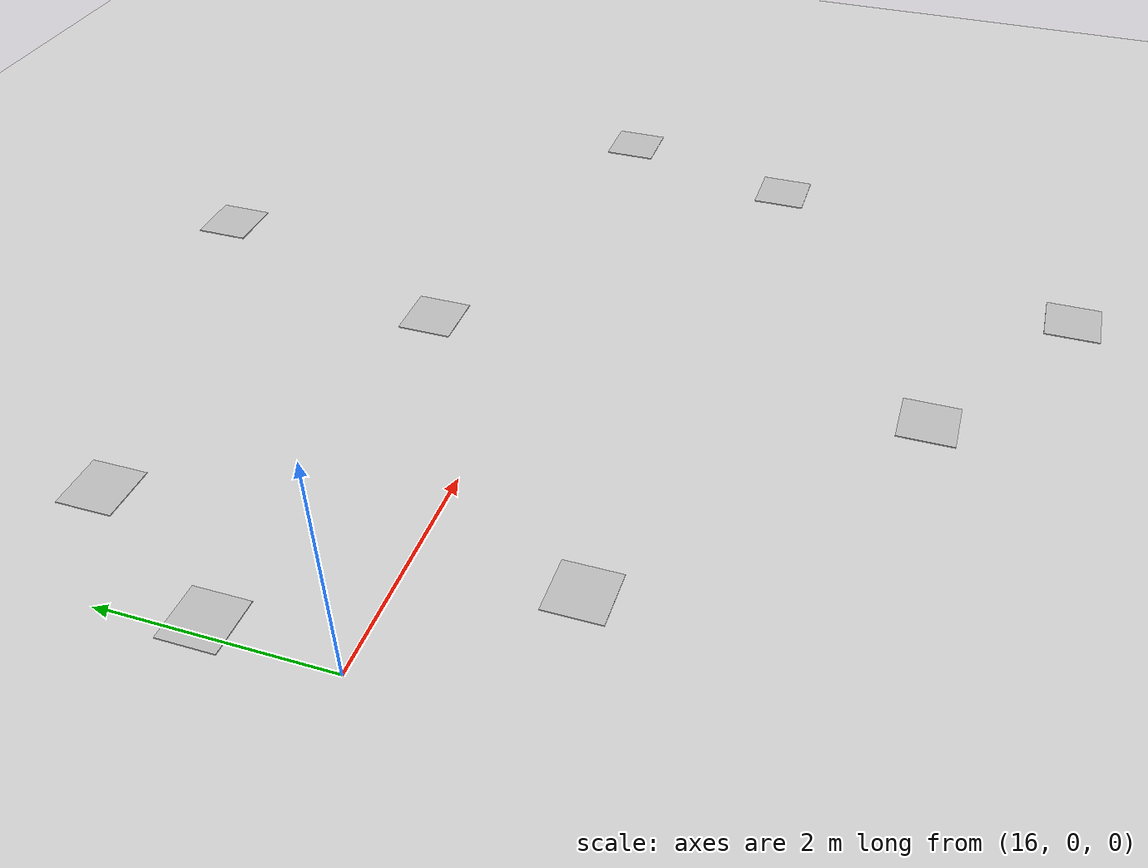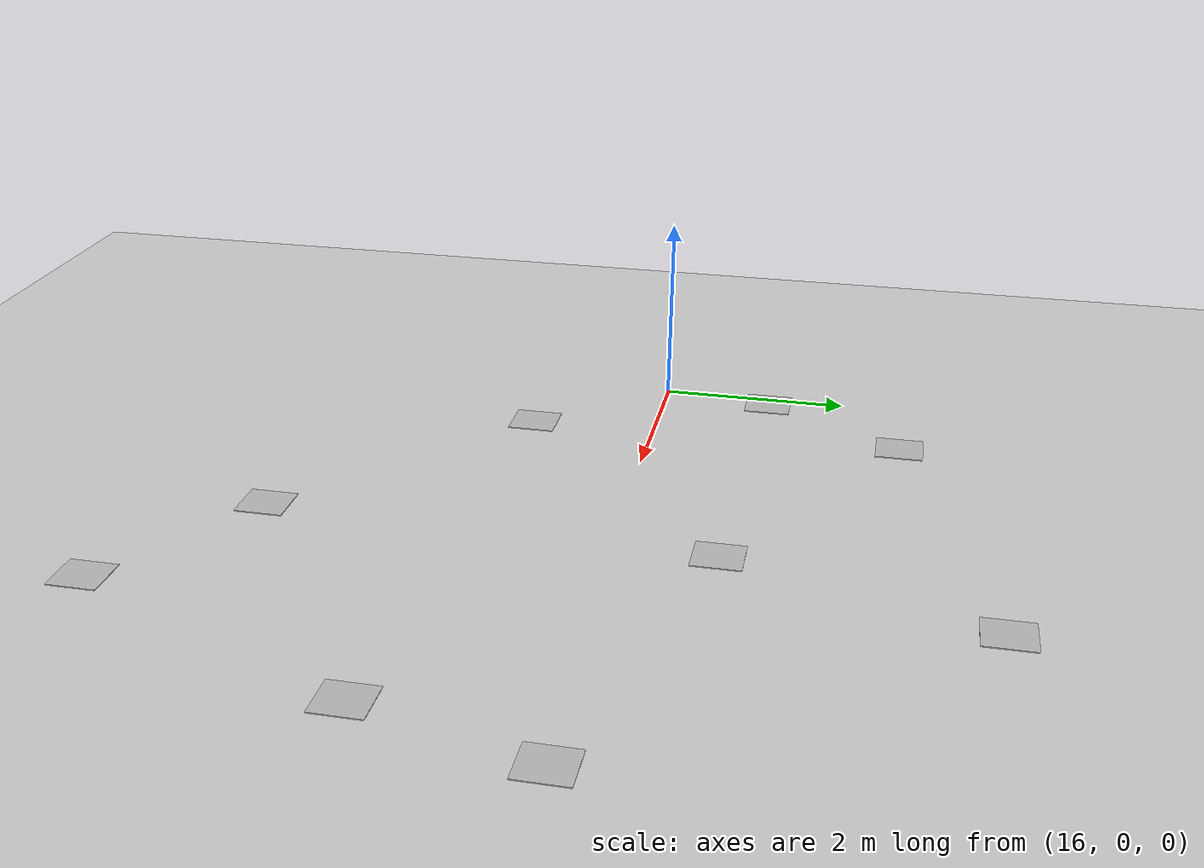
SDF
<sdf version="1.7">
 <world name="default">
  <model name="ground_plane">
   <static>1</static>
   <link name="link">
    <collision name="collision">
     <geometry><plane><normal>0 0 1</normal><size>5000 5000</size></plane></geometry>
     <surface><friction><ode><mu>1</mu><mu2>1</mu2></ode></friction></surface>
    </collision>
    <visual name="runway">
     <pose>0 0 0.005 0 -0 0</pose>
     <cast_shadows>0</cast_shadows>
     <geometry><plane><normal>0 0 1</normal><size>1829 45</size></plane></geometry>
     <material>
      <script><uri>file://media/materials/scripts/gazebo.material</uri><name>Gazebo/Runway</name></script>
     </material>
    </visual>
    <visual name="grass">
     <pose>0 0 -0.1 0 -0 0</pose>
     <cast_shadows>0</cast_shadows>
     <geometry><plane><normal>0 0 1</normal><size>5000 5000</size></plane></geometry>
     <material>
      <script><uri>file://media/materials/scripts/gazebo.material</uri><name>Gazebo/Grass</name></script>
     </material>
    </visual>
   </link>
  </model>
  <model name="circle8">
   <pose>16.1374 1.16999 0.005 0 -0 0</pose>
   <link name="link">
    <collision name="collision"><geometry><box><size>0.5 0.5 0.01</size></box></geometry></collision>
    <visual name="visual">
     <geometry><box><size>0.5 0.5 0.01</size></box></geometry>
     <material>
      <script>
       <uri>model://circle8/materials/scripts</uri>
       <uri>model://circle8/materials/textures</uri>
       <name>circle8</name>
      </script>
     </material>
    </visual>
    <inertial>
     <inertia><ixx>1</ixx><ixy>0</ixy><ixz>0</ixz><iyy>1</iyy><iyz>0</iyz><izz>1</izz></inertia>
     <mass>1</mass>
    </inertial>
   </link>
  </model>
  <model name="cross7">
   <pose>17.1859 -1.32964 0.005 0 -0 0</pose>
   <link name="link">
    <collision name="collision"><geometry><box><size>0.5 0.5 0.01</size></box></geometry></collision>
    <visual name="visual">
     <geometry><box><size>0.5 0.5 0.01</size></box></geometry>
     <material>
      <script>
       <uri>model://cross7/materials/scripts</uri>
       <uri>model://cross7/materials/textures</uri>
       <name>cross7</name>
      </script>
     </material>
    </visual>
    <inertial>
     <inertia><ixx>1</ixx><ixy>0</ixy><ixz>0</ixz><iyy>1</iyy><iyz>0</iyz><izz>1</izz></inertia>
     <mass>1</mass>
    </inertial>
   </link>
  </model>
  <model name="heptagon4">
   <pose>19.9266 1.06508 0.005 0 -0 0</pose>
   <link name="link">
    <collision name="collision"><geometry><box><size>0.5 0.5 0.01</size></box></geometry></collision>
    <visual name="visual">
     <geometry><box><size>0.5 0.5 0.01</size></box></geometry>
     <material>
      <script>
       <uri>model://heptagon4/materials/scripts</uri>
       <uri>model://heptagon4/materials/textures</uri>
       <name>heptagon4</name>
      </script>
     </material>
    </visual>
    <inertial>
     <inertia><ixx>1</ixx><ixy>0</ixy><ixz>0</ixz><iyy>1</iyy><iyz>0</iyz><izz>1</izz></inertia>
     <mass>1</mass>
    </inertial>
   </link>
  </model>
  <model name="hexagon9">
   <pose>23.0441 -1.58306 0.005 0 -0 0</pose>
   <link name="link">
    <collision name="collision"><geometry><box><size>0.5 0.5 0.01</size></box></geometry></collision>
    <visual name="visual">
     <geometry><box><size>0.5 0.5 0.01</size></box></geometry>
     <material>
      <script>
       <uri>model://hexagon9/materials/scripts</uri>
       <uri>model://hexagon9/materials/textures</uri>
       <name>hexagon9</name>
      </script>
     </material>
    </visual>
    <inertial>
     <inertia><ixx>1</ixx><ixy>0</ixy><ixz>0</ixz><iyy>1</iyy><iyz>0</iyz><izz>1</izz></inertia>
     <mass>1</mass>
    </inertial>
   </link>
  </model>
  <model name="hexagon1_0">
   <pose>23.5476 0.207987 0.005 0 -0 0</pose>
   <link name="link">
    <collision name="collision"><geometry><box><size>0.5 0.5 0.01</size></box></geometry></collision>
    <visual name="visual">
     <geometry><box><size>0.5 0.5 0.01</size></box></geometry>
     <material>
      <script>
       <uri>model://hexagon1/materials/scripts</uri>
       <uri>model://hexagon1/materials/textures</uri>
       <name>hexagon1</name>
      </script>
     </material>
    </visual>
    <inertial>
     <inertia><ixx>1</ixx><ixy>0</ixy><ixz>0</ixz><iyy>1</iyy><iyz>0</iyz><izz>1</izz></inertia>
     <mass>1</mass>
    </inertial>
   </link>
  </model>
  <model name="hexagon3">
   <pose>17.0631 2.66617 0.005 0 -0 0</pose>
   <link name="link">
    <collision name="collision"><geometry><box><size>0.5 0.5 0.01</size></box></geometry></collision>
    <visual name="visual">
     <geometry><box><size>0.5 0.5 0.01</size></box></geometry>
     <material>
      <script>
       <uri>model://hexagon3/materials/scripts</uri>
       <uri>model://hexagon3/materials/textures</uri>
       <name>hexagon3</name>
      </script>
     </material>
    </visual>
    <inertial>
     <inertia><ixx>1</ixx><ixy>0</ixy><ixz>0</ixz><iyy>1</iyy><iyz>0</iyz><izz>1</izz></inertia>
     <mass>1</mass>
    </inertial>
   </link>
  </model>
  <model name="pentagon7">
   <pose>19.8074 -3.51353 0.005 0 -0 0</pose>
   <link name="link">
    <collision name="collision"><geometry><box><size>0.5 0.5 0.01</size></box></geometry></collision>
    <visual name="visual">
     <geometry><box><size>0.5 0.5 0.01</size></box></geometry>
     <material>
      <script>
       <uri>model://pentagon7/materials/scripts</uri>
       <uri>model://pentagon7/materials/textures</uri>
       <name>pentagon7</name>
      </script>
     </material>
    </visual>
    <inertial>
     <inertia><ixx>1</ixx><ixy>0</ixy><ixz>0</ixz><iyy>1</iyy><iyz>0</iyz><izz>1</izz></inertia>
     <mass>1</mass>
    </inertial>
   </link>
  </model>
  <model name="rectangle2_0">
   <pose>20.7948 3.6941 0.005 0 -0 0</pose>
   <link name="link">
    <collision name="collision"><geometry><box><size>0.5 0.5 0.01</size></box></geometry></collision>
    <visual name="visual">
     <geometry><box><size>0.5 0.5 0.01</size></box></geometry>
     <material>
      <script>
       <uri>model://rectangle2/materials/scripts</uri>
       <uri>model://rectangle2/materials/textures</uri>
       <name>rectangle2</name>
      </script>
     </material>
    </visual>
    <inertial>
     <inertia><ixx>1</ixx><ixy>0</ixy><ixz>0</ixz><iyy>1</iyy><iyz>0</iyz><izz>1</izz></inertia>
     <mass>1</mass>
    </inertial>
   </link>
  </model>
  <model name="trapezoid9">
   <pose>21.6038 -4.61815 0.005 0 -0 0</pose>
   <link name="link">
    <collision name="collision"><geometry><box><size>0.5 0.5 0.01</size></box></geometry></collision>
    <visual name="visual">
     <geometry><box><size>0.5 0.5 0.01</size></box></geometry>
     <material>
      <script>
       <uri>model://trapezoid9/materials/scripts</uri>
       <uri>model://trapezoid9/materials/textures</uri>
       <name>trapezoid9</name>
      </script>
     </material>
    </visual>
    <inertial>
     <inertia><ixx>1</ixx><ixy>0</ixy><ixz>0</ixz><iyy>1</iyy><iyz>0</iyz><izz>1</izz></inertia>
     <mass>1</mass>
    </inertial>
   </link>
  </model>
 </world>
</sdf>
